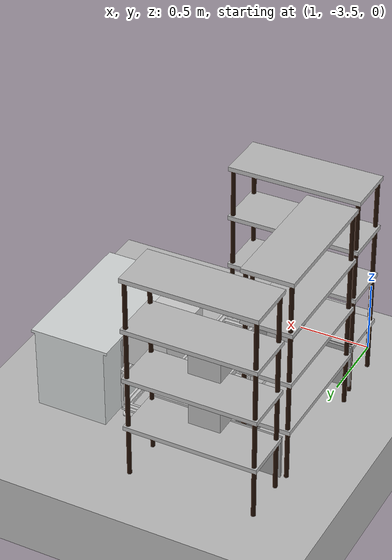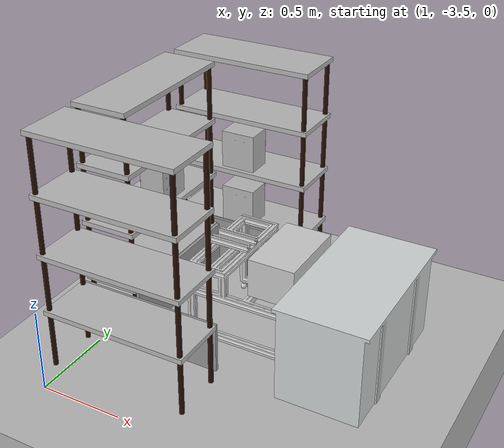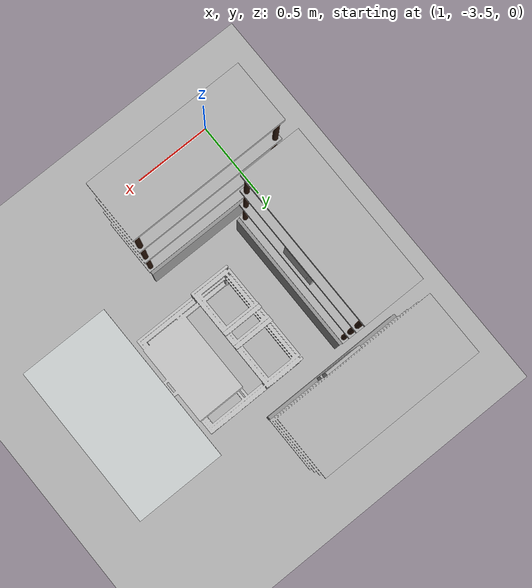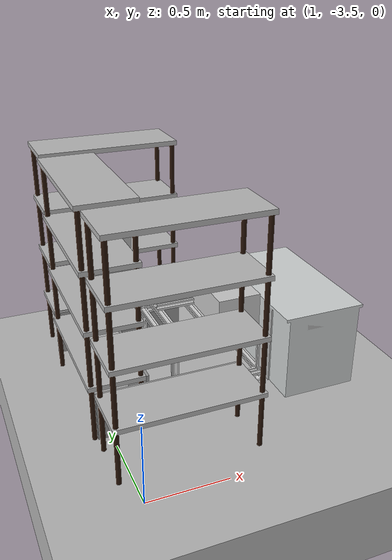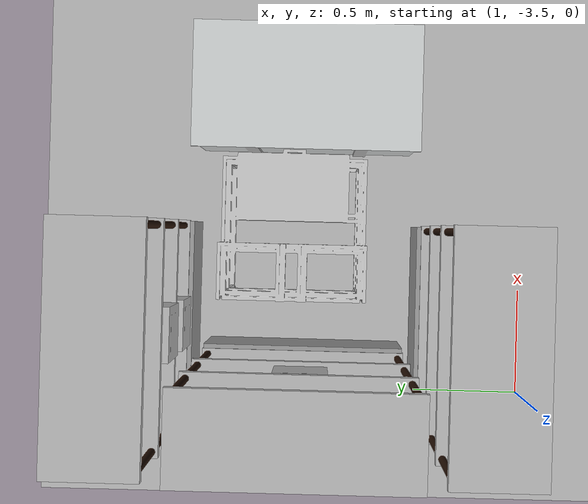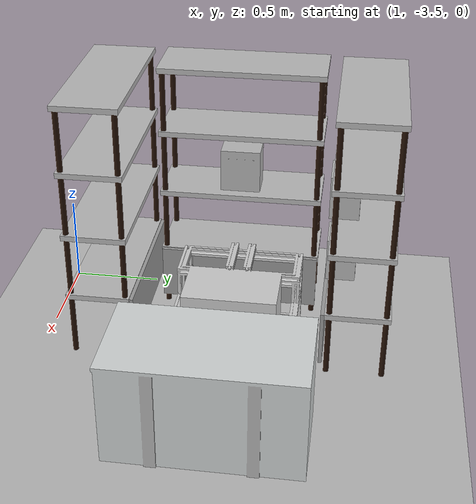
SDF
<?xml version="1.0"?>
<sdf version="1.6">
  <world name="default">

    <gui>
      <camera name="user_default">
        <pose>3.874 -2.386 1.218 0 0.115 3.124</pose> <!--UR5 View -->
      </camera>
    </gui>

    <light name="light0" type="directional">
      <pose frame="">0 -18.818 8 0.75 -0 0</pose>
      <diffuse>0.5 0.5 0.5 1</diffuse>
      <specular>0.1 0.1 0.1 1</specular>
      <direction>0.1 0.1 -0.9</direction>
      <attenuation>
        <range>20</range>
        <constant>0.5</constant>
        <linear>0.01</linear>
        <quadratic>0.001</quadratic>
      </attenuation>
      <cast_shadows>0</cast_shadows>
    </light>

    <light name="light3" type="directional">
      <pose frame="">3.9239 1.64974 4 0 1.2 0</pose>
      <diffuse>0.5 0.5 0.5 1</diffuse>
      <specular>0.1 0.1 0.1 1</specular>
      <direction>0.1 0.1 -0.9</direction>
      <attenuation>
        <range>20</range>
        <constant>0.5</constant>
        <linear>0.01</linear>
        <quadratic>0.001</quadratic>
      </attenuation>
      <cast_shadows>0</cast_shadows>
    </light>

    <light name="light5" type="directional">
      <pose frame="">0.454419 12.4783 5 -0.8 0 0</pose>
      <diffuse>0.5 0.5 0.5 1</diffuse>
      <specular>0.1 0.1 0.1 1</specular>
      <direction>0.1 0.1 -0.9</direction>
      <attenuation>
        <range>20</range>
        <constant>0.5</constant>
        <linear>0.01</linear>
        <quadratic>0.001</quadratic>
      </attenuation>
      <cast_shadows>0</cast_shadows>
    </light>

    <scene>
		<shadows>false</shadows>
		<ambient>0.5 0.5 0.5 1.0</ambient>
    <grid>false</grid>
      <sky>
        <time>22</time>
        <sunrise>20</sunrise>
        <sunset>21</sunset>
        <clouds>
          <humidity>0</humidity>
        </clouds>
      </sky>
    </scene>

    <include>
      <uri>model://ground_plane</uri>
    </include>

  <include>
      <uri>model://moon_surface</uri>
      <pose>0 0 -0.25 0 0 0</pose>
	</include>

  <!-- NOISE BOX -->
  <!-- NOISE BOX -->

  <!-- RACK 1 -->
  <include>
      <uri>model://rack</uri>
      <name>rack1</name>
      <pose>1.05 -2.455 0.0 0 -0 3.14</pose>
	</include>

  <include>
      <uri>model://boxes/box_1</uri>
      <name>box1</name>
      <pose>1.13 -2.455 0.89 0 0 0.0</pose>
	</include>

  <!-- RACK 1 -->

  <!-- RACK 2 -->
  <include>
      <uri>model://rack</uri>
      <name>rack2</name>
      <pose>1.35 -1.755 0.0 0 0 1.57</pose>
	</include>

  <include>
      <uri>model://boxes/box_3</uri>
      <name>box3</name>
      <pose>1.35 -1.865 0.51 0 0 -1.57</pose>
	</include>

  <include>
      <uri>model://boxes/box_49</uri>
      <name>box49</name>
      <pose>1.35 -1.865 0.89 0 0 -1.57</pose>
	</include>
  <!-- RACK 2 -->

  <!-- RACK 3 -->
  <include>
      <uri>model://rack</uri>
      <name>rack3</name>
      <pose>1.35 -3.155 0.0 0 0 -1.57</pose>
	</include>
  <!-- RACK 3 -->

  <include>
      <uri>model://arm_base</uri>
      <name>arm_base</name>
      <pose>1.78 -2.4 0.253 0 -0 0.0</pose>
	</include>

  <include>
      <uri>model://drop_table</uri>
      <name>drop_table</name>
      <pose>2.4 -2.45 0 0 -0 0.0</pose>
	</include>

  <plugin name="gazebo_link_ur5_attacher" filename="libgazebo_link_ur5_attacher.so"/>

  <plugin name="gazebo_ros_state" filename="libgazebo_ros_state.so">
      <ros>
        <namespace>/_makeit</namespace>
      </ros>

      <update_rate>1.0</update_rate>
  </plugin>

  </world>
</sdf>
